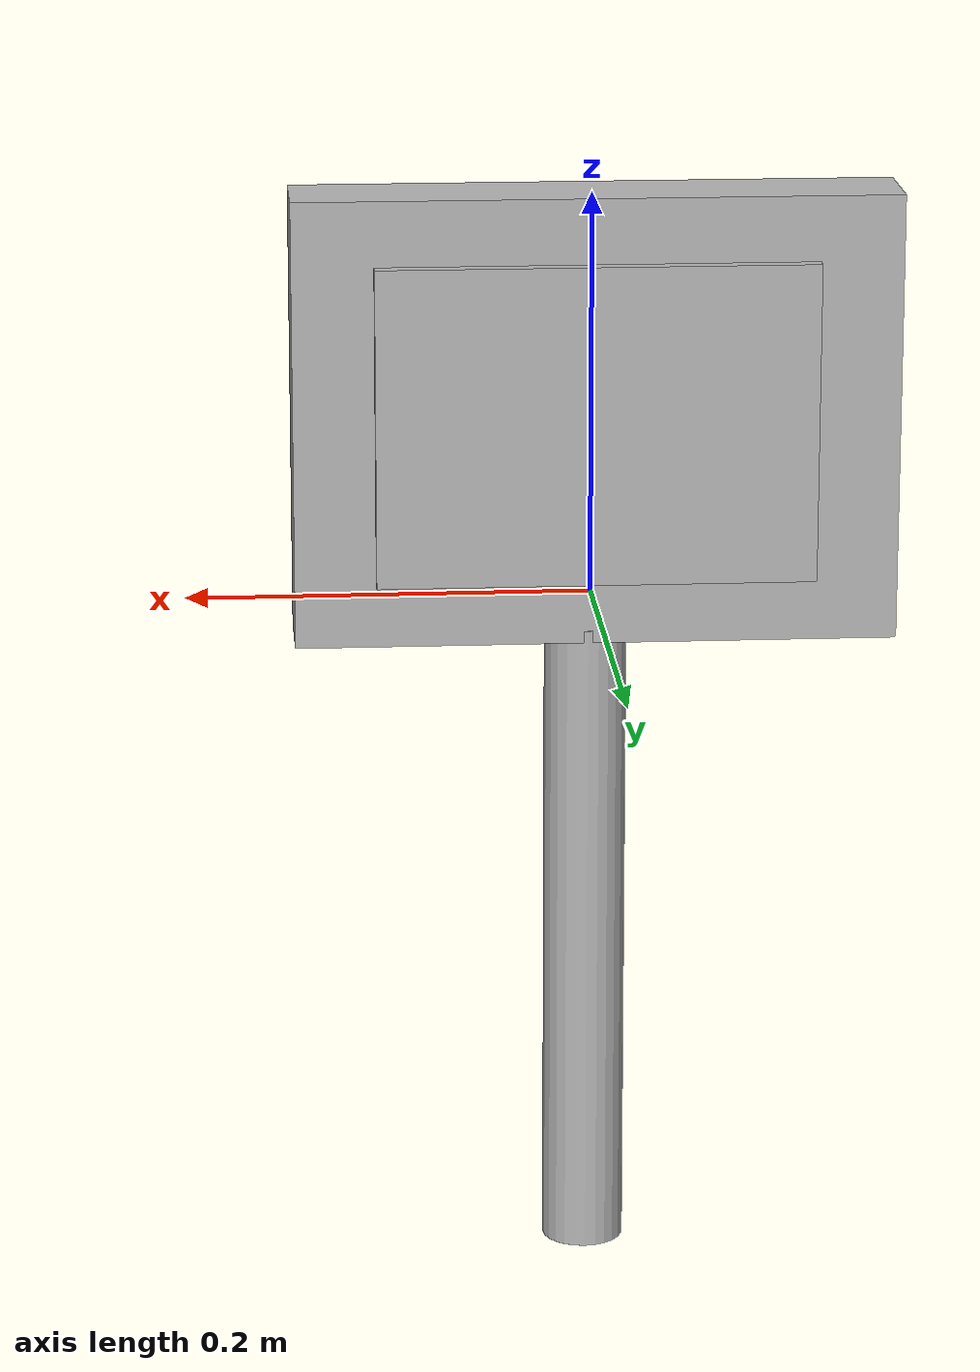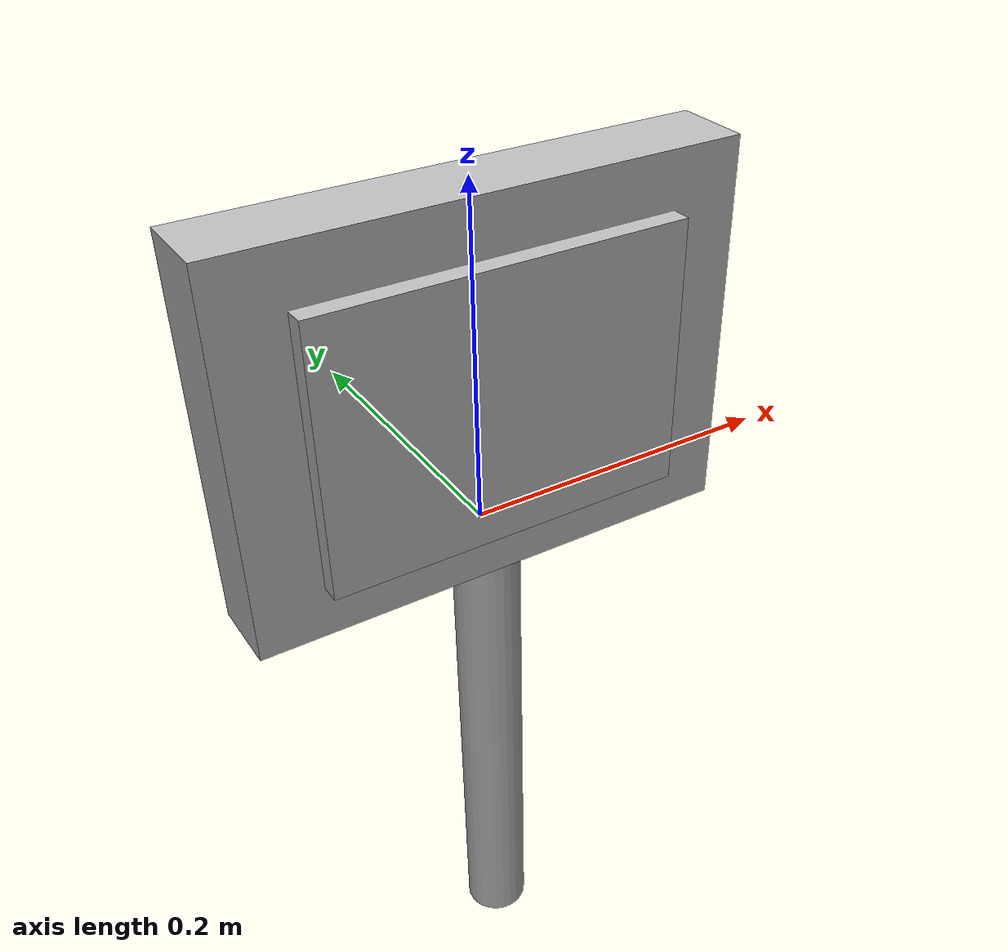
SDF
<?xml version='1.0'?>
<sdf version='1.7'>
  <model name='letrero_insecto'>
    <link name='link_0'>
      <inertial>
        <mass>0.00543151</mass>
        <inertia>
          <ixx>4.90351e-06</ixx>
          <ixy>0</ixy>
          <ixz>0</ixz>
          <iyy>4.90351e-06</iyy>
          <iyz>0</iyz>
          <izz>1.12837e-07</izz>
        </inertia>
        <pose>0 0 0 0 -0 0</pose>
      </inertial>
      <pose>0.002372 -0.000902 -0.178803 0 -0 0</pose>
      <self_collide>0</self_collide>
      <enable_wind>0</enable_wind>
      <kinematic>0</kinematic>
      <visual name='visual'>
        <pose>0 0 0 0 -0 0</pose>
        <geometry>
          <cylinder>
            <radius>0.0203836</radius>
            <length>0.327243</length>
          </cylinder>
        </geometry>
        <material>
          <lighting>1</lighting>
          <script>
            <uri>model://letrero_insecto/madera/scripts</uri>
            <uri>model://letrero_insecto/madera/textures</uri>
            <name>textur/madera</name>
          </script>
          <shader type='pixel'/>
          <emissive>0 0 0 1</emissive>
        </material>
        <transparency>0</transparency>
        <cast_shadows>1</cast_shadows>
      </visual>
      <collision name='collision'>
        <laser_retro>0</laser_retro>
        <max_contacts>10</max_contacts>
        <pose>0 0 0 0 -0 0</pose>
        <geometry>
          <cylinder>
            <radius>0.020384</radius>
            <length>0.327243</length>
          </cylinder>
        </geometry>
        <surface>
          <friction>
            <ode>
              <mu>1</mu>
              <mu2>1</mu2>
              <fdir1>0 0 0</fdir1>
              <slip1>0</slip1>
              <slip2>0</slip2>
            </ode>
            <torsional>
              <coefficient>1</coefficient>
              <patch_radius>0</patch_radius>
              <surface_radius>0</surface_radius>
              <use_patch_radius>1</use_patch_radius>
              <ode>
                <slip>0</slip>
              </ode>
            </torsional>
          </friction>
          <bounce>
            <restitution_coefficient>0</restitution_coefficient>
            <threshold>1e+06</threshold>
          </bounce>
          <contact>
            <collide_without_contact>0</collide_without_contact>
            <collide_without_contact_bitmask>1</collide_without_contact_bitmask>
            <collide_bitmask>1</collide_bitmask>
            <ode>
              <soft_cfm>0</soft_cfm>
              <soft_erp>0.2</soft_erp>
              <kp>1e+13</kp>
              <kd>1</kd>
              <max_vel>0.01</max_vel>
              <min_depth>0</min_depth>
            </ode>
            <bullet>
              <split_impulse>1</split_impulse>
              <split_impulse_penetration_threshold>-0.01</split_impulse_penetration_threshold>
              <soft_cfm>0</soft_cfm>
              <soft_erp>0.2</soft_erp>
              <kp>1e+13</kp>
              <kd>1</kd>
            </bullet>
          </contact>
        </surface>
      </collision>
    </link>
    <link name='link_1'>
      <inertial>
        <mass>0.00299633</mass>
        <inertia>
          <ixx>1.27855e-05</ixx>
          <ixy>0</ixy>
          <ixz>0</ixz>
          <iyy>3.42923e-05</iyy>
          <iyz>0</iyz>
          <izz>2.25402e-05</izz>
        </inertia>
        <pose>0 0 0 0 -0 0</pose>
      </inertial>
      <pose>-0.001685 -0.003559 0.089666 0 -0 0</pose>
      <self_collide>0</self_collide>
      <enable_wind>0</enable_wind>
      <kinematic>0</kinematic>
      <visual name='visual'>
        <pose>0 0 0 0 -0 0</pose>
        <geometry>
          <box>
            <size>0.296988 0.04549 0.221665</size>
          </box>
        </geometry>
        <material>
          <lighting>1</lighting>
          <script>
            <uri>model://letrero_insecto/madera/scripts</uri>
            <uri>model://letrero_insecto/madera/textures</uri>
            <name>textur/madera</name>
          </script>
          <shader type='pixel'/>
          <emissive>0 0 0 1</emissive>
        </material>
        <transparency>0</transparency>
        <cast_shadows>1</cast_shadows>
      </visual>
      <collision name='collision'>
        <laser_retro>0</laser_retro>
        <max_contacts>10</max_contacts>
        <pose>0 0 0 0 -0 0</pose>
        <geometry>
          <box>
            <size>0.296988 0.04549 0.221665</size>
          </box>
        </geometry>
        <surface>
          <friction>
            <ode>
              <mu>1</mu>
              <mu2>1</mu2>
              <fdir1>0 0 0</fdir1>
              <slip1>0</slip1>
              <slip2>0</slip2>
            </ode>
            <torsional>
              <coefficient>1</coefficient>
              <patch_radius>0</patch_radius>
              <surface_radius>0</surface_radius>
              <use_patch_radius>1</use_patch_radius>
              <ode>
                <slip>0</slip>
              </ode>
            </torsional>
          </friction>
          <bounce>
            <restitution_coefficient>0</restitution_coefficient>
            <threshold>1e+06</threshold>
          </bounce>
          <contact>
            <collide_without_contact>0</collide_without_contact>
            <collide_without_contact_bitmask>1</collide_without_contact_bitmask>
            <collide_bitmask>1</collide_bitmask>
            <ode>
              <soft_cfm>0</soft_cfm>
              <soft_erp>0.2</soft_erp>
              <kp>1e+13</kp>
              <kd>1</kd>
              <max_vel>0.01</max_vel>
              <min_depth>0</min_depth>
            </ode>
            <bullet>
              <split_impulse>1</split_impulse>
              <split_impulse_penetration_threshold>-0.01</split_impulse_penetration_threshold>
              <soft_cfm>0</soft_cfm>
              <soft_erp>0.2</soft_erp>
              <kp>1e+13</kp>
              <kd>1</kd>
            </bullet>
          </contact>
        </surface>
      </collision>
    </link>
    <link name='link_2'>
      <inertial>
        <mass>0.00219695</mass>
        <inertia>
          <ixx>5.34209e-06</ixx>
          <ixy>0</ixy>
          <ixz>0</ixz>
          <iyy>1.31531e-05</iyy>
          <iyz>0</iyz>
          <izz>9.31738e-06</izz>
        </inertia>
        <pose>0 0 0 0 -0 0</pose>
      </inertial>
      <pose>-0.001275 -0.005928 0.089136 0 -0 0</pose>
      <self_collide>0</self_collide>
      <enable_wind>0</enable_wind>
      <kinematic>0</kinematic>
      <visual name='visual'>
        <pose>0 0 0 0 -0 0</pose>
        <geometry>
          <box>
            <size>0.216284 0.06414 0.15832</size>
          </box>
        </geometry>
        <material>
          <lighting>1</lighting>
          <script>
            <uri>model://letrero_insecto/materials/scripts</uri>
            <uri>model://letrero_insecto/materials/textures</uri>
            <name>textur/insec</name>
          </script>
          <shader type='pixel'/>
          <emissive>0 0 0 1</emissive>
        </material>
        <transparency>0</transparency>
        <cast_shadows>1</cast_shadows>
      </visual>
      <collision name='collision'>
        <laser_retro>0</laser_retro>
        <max_contacts>10</max_contacts>
        <pose>0 0 0 0 -0 0</pose>
        <geometry>
          <box>
            <size>0.216284 0.06414 0.15832</size>
          </box>
        </geometry>
        <surface>
          <friction>
            <ode>
              <mu>1</mu>
              <mu2>1</mu2>
              <fdir1>0 0 0</fdir1>
              <slip1>0</slip1>
              <slip2>0</slip2>
            </ode>
            <torsional>
              <coefficient>1</coefficient>
              <patch_radius>0</patch_radius>
              <surface_radius>0</surface_radius>
              <use_patch_radius>1</use_patch_radius>
              <ode>
                <slip>0</slip>
              </ode>
            </torsional>
          </friction>
          <bounce>
            <restitution_coefficient>0</restitution_coefficient>
            <threshold>1e+06</threshold>
          </bounce>
          <contact>
            <collide_without_contact>0</collide_without_contact>
            <collide_without_contact_bitmask>1</collide_without_contact_bitmask>
            <collide_bitmask>1</collide_bitmask>
            <ode>
              <soft_cfm>0</soft_cfm>
              <soft_erp>0.2</soft_erp>
              <kp>1e+13</kp>
              <kd>1</kd>
              <max_vel>0.01</max_vel>
              <min_depth>0</min_depth>
            </ode>
            <bullet>
              <split_impulse>1</split_impulse>
              <split_impulse_penetration_threshold>-0.01</split_impulse_penetration_threshold>
              <soft_cfm>0</soft_cfm>
              <soft_erp>0.2</soft_erp>
              <kp>1e+13</kp>
              <kd>1</kd>
            </bullet>
          </contact>
        </surface>
      </collision>
    </link>
    <joint name='link_0_JOINT_1' type='fixed'>
      <parent>link_0</parent>
      <child>link_1</child>
      <pose>0 0 0 0 -0 0</pose>
      <physics>
        <ode>
          <limit>
            <cfm>0</cfm>
            <erp>0.2</erp>
          </limit>
          <suspension>
            <cfm>0</cfm>
            <erp>0.2</erp>
          </suspension>
        </ode>
      </physics>
    </joint>
    <joint name='link_0_JOINT_2' type='fixed'>
      <parent>link_0</parent>
      <child>link_2</child>
      <pose>0 0 0 0 -0 0</pose>
      <physics>
        <ode>
          <limit>
            <cfm>0</cfm>
            <erp>0.2</erp>
          </limit>
          <suspension>
            <cfm>0</cfm>
            <erp>0.2</erp>
          </suspension>
        </ode>
      </physics>
    </joint>
    <static>1</static>
    <allow_auto_disable>1</allow_auto_disable>
  </model>
</sdf>
